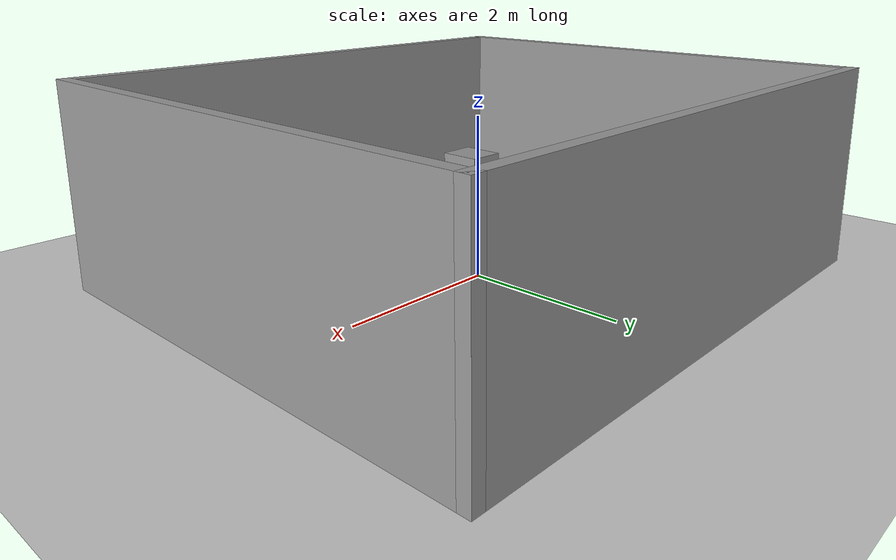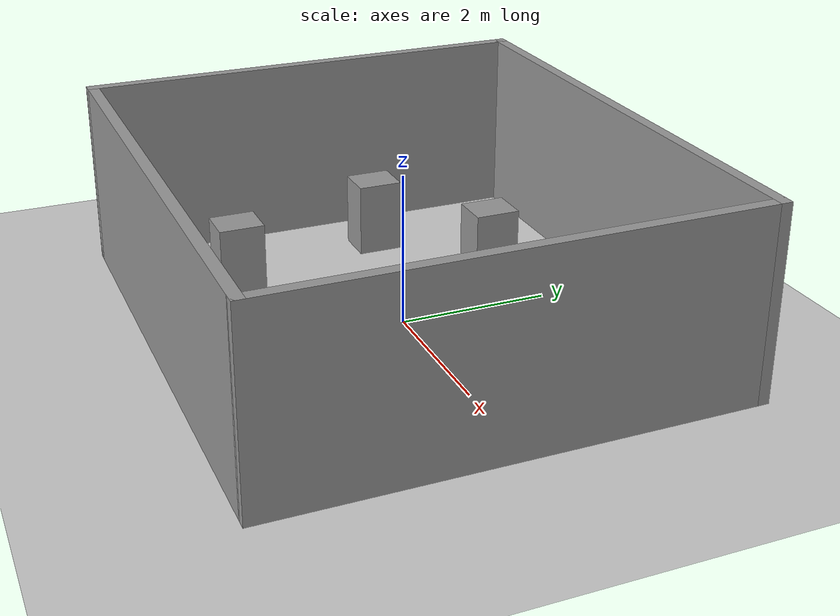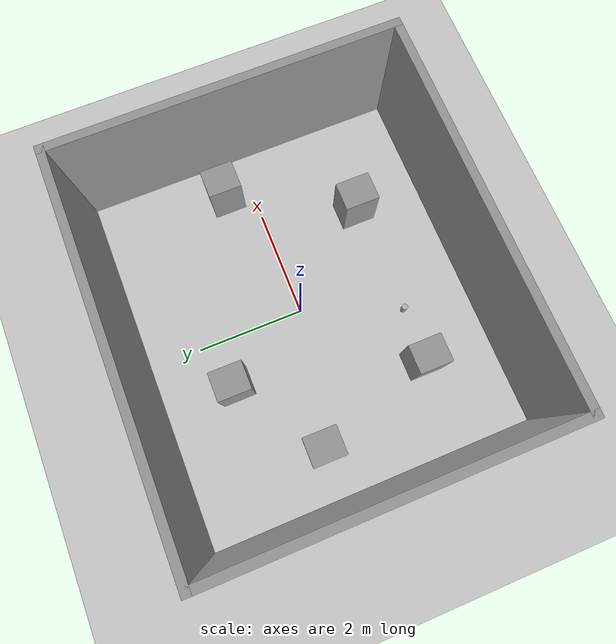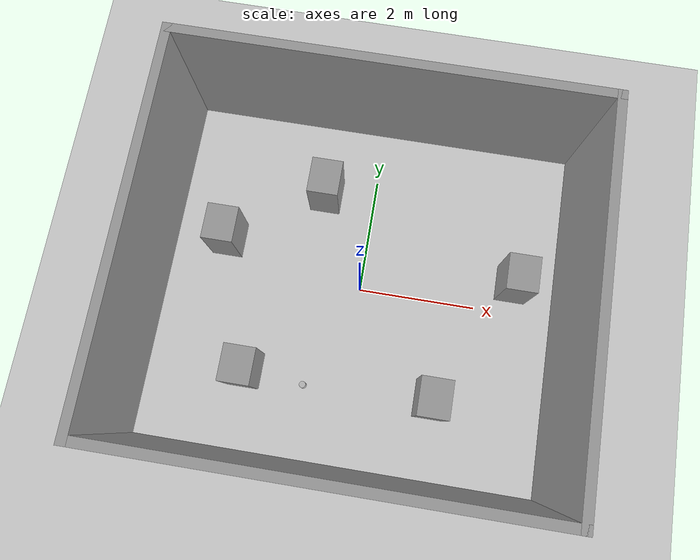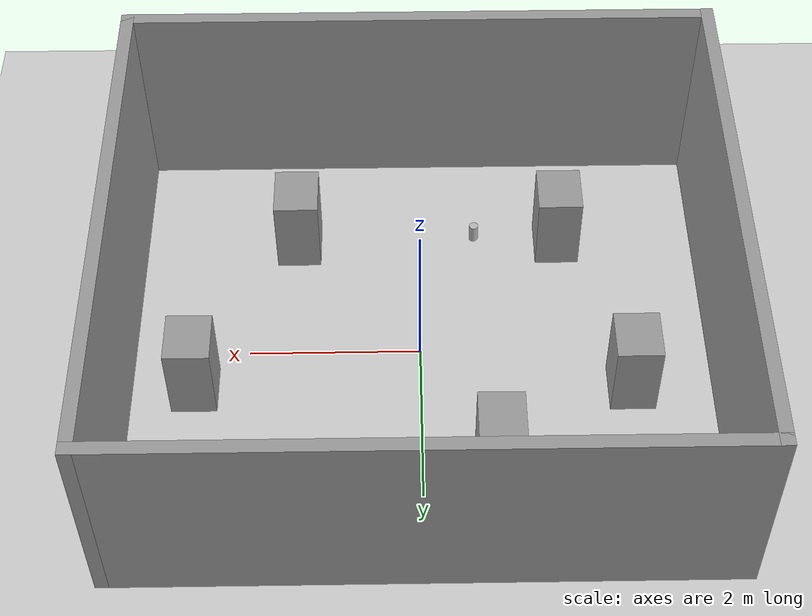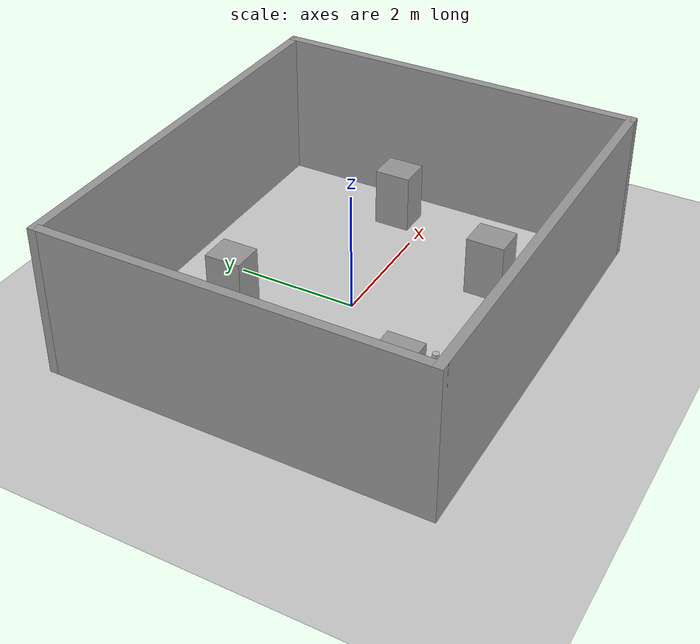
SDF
<sdf version="1.6">
 <world name="default">
  <light name="sun" type="directional">
   <pose>0 0 10 0 -0 0</pose>
   <diffuse>0.8 0.8 0.8 1</diffuse>
   <specular>0.2 0.2 0.2 1</specular>
   <attenuation>
    <range>1000</range>
    <constant>0.9</constant>
    <linear>0.01</linear>
    <quadratic>0.001</quadratic>
   </attenuation>
   <direction>-0.5 0.1 -0.9</direction>
  </light>
  <model name="ground_plane">
   <static>1</static>
   <link name="link">
    <collision name="collision">
     <geometry><plane><normal>0 0 1</normal><size>100 100</size></plane></geometry>
     <surface>
      <contact><collide_bitmask>65535</collide_bitmask></contact>
      <friction><ode><mu>100</mu><mu2>50</mu2></ode></friction>
     </surface>
    </collision>
    <visual name="visual">
     <cast_shadows>0</cast_shadows>
     <geometry><plane><normal>0 0 1</normal><size>100 100</size></plane></geometry>
     <material>
      <script><uri>file://media/materials/scripts/gazebo.material</uri><name>Gazebo/Grey</name></script>
     </material>
    </visual>
   </link>
  </model>
  <gravity>0 0 -9.8</gravity>
  <magnetic_field>6e-06 2.3e-05 -4.2e-05</magnetic_field>
  <atmosphere type="adiabatic"/>
  <physics name="default_physics" default="0" type="ode">
   <max_step_size>0.001</max_step_size>
   <real_time_factor>1</real_time_factor>
   <real_time_update_rate>1000</real_time_update_rate>
  </physics>
  <scene><ambient>0.4 0.4 0.4 1</ambient><background>0.7 0.7 0.7 1</background><shadows>1</shadows></scene>
  <spherical_coordinates>
   <surface_model>EARTH_WGS84</surface_model>
   <latitude_deg>0</latitude_deg>
   <longitude_deg>0</longitude_deg>
   <elevation>0</elevation>
   <heading_deg>0</heading_deg>
  </spherical_coordinates>
  <model name="Map">
   <pose>-0.01697 -0.037236 0 0 -0 0</pose>
   <link name="Wall_0">
    <collision name="Wall_0_Collision">
     <geometry><box><size>7 0.15 2.5</size></box></geometry>
     <pose>0 0 1.25 0 -0 0</pose>
    </collision>
    <visual name="Wall_0_Visual">
     <pose>0 0 1.25 0 -0 0</pose>
     <geometry><box><size>7 0.15 2.5</size></box></geometry>
     <material>
      <script><uri>file://media/materials/scripts/gazebo.material</uri><name>Gazebo/Grey</name></script>
      <ambient>1 1 1 1</ambient>
     </material>
     <meta><layer>0</layer></meta>
    </visual>
    <pose>0 -3.05 0 0 -0 0</pose>
   </link>
   <link name="Wall_1">
    <collision name="Wall_1_Collision">
     <geometry><box><size>6.25 0.15 2.5</size></box></geometry>
     <pose>0 0 1.25 0 -0 0</pose>
    </collision>
    <visual name="Wall_1_Visual">
     <pose>0 0 1.25 0 -0 0</pose>
     <geometry><box><size>6.25 0.15 2.5</size></box></geometry>
     <material>
      <script><uri>file://media/materials/scripts/gazebo.material</uri><name>Gazebo/Grey</name></script>
      <ambient>1 1 1 1</ambient>
     </material>
     <meta><layer>0</layer></meta>
    </visual>
    <pose>3.425 0 0 0 -0 1.5708</pose>
   </link>
   <link name="Wall_2">
    <collision name="Wall_2_Collision">
     <geometry><box><size>7 0.15 2.5</size></box></geometry>
     <pose>0 0 1.25 0 -0 0</pose>
    </collision>
    <visual name="Wall_2_Visual">
     <pose>0 0 1.25 0 -0 0</pose>
     <geometry><box><size>7 0.15 2.5</size></box></geometry>
     <material>
      <script><uri>file://media/materials/scripts/gazebo.material</uri><name>Gazebo/Grey</name></script>
      <ambient>1 1 1 1</ambient>
     </material>
     <meta><layer>0</layer></meta>
    </visual>
    <pose>0 3.05 0 0 -0 3.14159</pose>
   </link>
   <link name="Wall_3">
    <collision name="Wall_3_Collision">
     <geometry><box><size>6.25 0.15 2.5</size></box></geometry>
     <pose>0 0 1.25 0 -0 0</pose>
    </collision>
    <visual name="Wall_3_Visual">
     <pose>0 0 1.25 0 -0 0</pose>
     <geometry><box><size>6.25 0.15 2.5</size></box></geometry>
     <material>
      <script><uri>file://media/materials/scripts/gazebo.material</uri><name>Gazebo/Grey</name></script>
      <ambient>1 1 1 1</ambient>
     </material>
     <meta><layer>0</layer></meta>
    </visual>
    <pose>-3.425 0 0 0 -0 -1.5708</pose>
   </link>
   <static>1</static>
  </model>
  <model name="unit_box">
   <pose>1.46059 -1.6836 0.499997 -6e-06 -6e-06 -0.000185</pose>
   <link name="link">
    <inertial>
     <mass>1</mass>
     <inertia>
      <ixx>0.166667</ixx>
      <ixy>0</ixy>
      <ixz>0</ixz>
      <iyy>0.166667</iyy>
      <iyz>0</iyz>
      <izz>0.166667</izz>
     </inertia>
    </inertial>
    <collision name="collision"><geometry><box><size>0.522098 0.629985 1</size></box></geometry></collision>
    <visual name="visual">
     <geometry><box><size>0.522098 0.629985 1</size></box></geometry>
     <material>
      <script><name>Gazebo/Grey</name><uri>file://media/materials/scripts/gazebo.material</uri></script>
     </material>
    </visual>
   </link>
  </model>
  <model name="unit_box_clone">
   <pose>-1.69206 -1.6709 0.5 0 0 -0.000224</pose>
   <link name="link">
    <inertial>
     <mass>1</mass>
     <inertia>
      <ixx>0.166667</ixx>
      <ixy>0</ixy>
      <ixz>0</ixz>
      <iyy>0.166667</iyy>
      <iyz>0</iyz>
      <izz>0.166667</izz>
     </inertia>
    </inertial>
    <collision name="collision"><geometry><box><size>0.522098 0.605296 1</size></box></geometry></collision>
    <visual name="visual">
     <geometry><box><size>0.522098 0.605296 1</size></box></geometry>
     <material>
      <script><name>Gazebo/Grey</name><uri>file://media/materials/scripts/gazebo.material</uri></script>
     </material>
    </visual>
   </link>
  </model>
  <model name="unit_box_clone_0">
   <pose>-0.858387 1.62309 0.5 0 0 -0.000131</pose>
   <link name="link">
    <inertial>
     <mass>1</mass>
     <inertia>
      <ixx>0.166667</ixx>
      <ixy>0</ixy>
      <ixz>0</ixz>
      <iyy>0.166667</iyy>
      <iyz>0</iyz>
      <izz>0.166667</izz>
     </inertia>
    </inertial>
    <collision name="collision"><geometry><box><size>0.522098 0.605296 1</size></box></geometry></collision>
    <visual name="visual">
     <geometry><box><size>0.522098 0.605296 1</size></box></geometry>
     <material>
      <script><name>Gazebo/Grey</name><uri>file://media/materials/scripts/gazebo.material</uri></script>
     </material>
    </visual>
   </link>
  </model>
  <model name="unit_box_clone_1">
   <pose>-2.42404 0.555597 0.5 -0 -0 -0.000128</pose>
   <link name="link">
    <inertial>
     <mass>1</mass>
     <inertia>
      <ixx>0.166667</ixx>
      <ixy>0</ixy>
      <ixz>0</ixz>
      <iyy>0.166667</iyy>
      <iyz>0</iyz>
      <izz>0.166667</izz>
     </inertia>
    </inertial>
    <collision name="collision"><geometry><box><size>0.522098 0.605296 1</size></box></geometry></collision>
    <visual name="visual">
     <geometry><box><size>0.522098 0.605296 1</size></box></geometry>
     <material>
      <script><name>Gazebo/Grey</name><uri>file://media/materials/scripts/gazebo.material</uri></script>
     </material>
    </visual>
   </link>
  </model>
  <model name="unit_box_clone_2">
   <pose>2.59826 0.514926 0.5 0 -0 -0.000128</pose>
   <link name="link">
    <inertial>
     <mass>1</mass>
     <inertia>
      <ixx>0.166667</ixx>
      <ixy>0</ixy>
      <ixz>0</ixz>
      <iyy>0.166667</iyy>
      <iyz>0</iyz>
      <izz>0.166667</izz>
     </inertia>
    </inertial>
    <collision name="collision"><geometry><box><size>0.522098 0.605296 1</size></box></geometry></collision>
    <visual name="visual">
     <geometry><box><size>0.522098 0.605296 1</size></box></geometry>
     <material>
      <script><name>Gazebo/Grey</name><uri>file://media/materials/scripts/gazebo.material</uri></script>
     </material>
    </visual>
   </link>
  </model>
  <model name="beer">
   <link name="link">
    <pose>0 0 0.115 0 -0 0</pose>
    <inertial>
     <mass>0.39</mass>
     <inertia><ixx>0.00058</ixx><ixy>0</ixy><ixz>0</ixz><iyy>0.00058</iyy><iyz>0</iyz><izz>0.00019</izz></inertia>
    </inertial>
    <collision name="collision">
     <geometry><cylinder><radius>0.055</radius><length>0.23</length></cylinder></geometry>
    </collision>
    <visual name="visual">
     <geometry><cylinder><radius>0.055</radius><length>0.23</length></cylinder></geometry>
     <material>
      <script>
       <uri>model://beer/materials/scripts</uri>
       <uri>model://beer/materials/textures</uri>
       <name>Beer/Diffuse</name>
      </script>
     </material>
    </visual>
   </link>
   <pose>-0.685554 -1.78273 -2e-06 1e-06 -0 -1e-06</pose>
  </model>
 </world>
</sdf>
